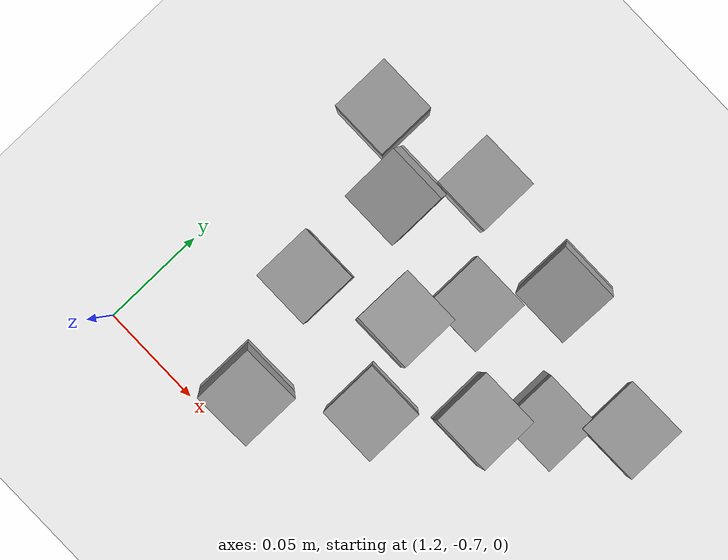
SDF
<sdf version="1.7">
 <world name="default">
  <model name="ground_plane">
   <static>1</static>
   <link name="link">
    <collision name="collision">
     <geometry><plane><normal>0 0 1</normal><size>100 100</size></plane></geometry>
     <surface><friction><ode><mu>100</mu><mu2>50</mu2></ode></friction></surface>
    </collision>
    <visual name="visual">
     <cast_shadows>0</cast_shadows>
     <geometry><plane><normal>0 0 1</normal><size>100 100</size></plane></geometry>
     <material>
      <script><uri>file://media/materials/scripts/gazebo.material</uri><name>Gazebo/Grey</name></script>
     </material>
    </visual>
   </link>
  </model>
  <model name="stone_road_1">
   <link name="link_0_clone_0">
    <inertial>
     <mass>1</mass>
     <inertia>
      <ixx>0.166667</ixx>
      <ixy>0</ixy>
      <ixz>0</ixz>
      <iyy>0.166667</iyy>
      <iyz>0</iyz>
      <izz>0.166667</izz>
     </inertia>
    </inertial>
    <pose>-0.104982 -0.15412 0.003778 0.2 -0 0</pose>
    <kinematic>1</kinematic>
    <visual name="visual">
     <geometry><box><size>0.03 0.03 0.03</size></box></geometry>
     <material>
      <lighting>1</lighting>
      <script><uri>file://media/materials/scripts/gazebo.material</uri><name>Gazebo/Grey</name></script>
      <shader type="pixel"><normal_map>__default__</normal_map></shader>
      <ambient>0.3 0.3 0.3 1</ambient>
      <diffuse>0.7 0.7 0.7 1</diffuse>
      <specular>0.01 0.01 0.01 1</specular>
      <emissive>0 0 0 1</emissive>
     </material>
    </visual>
    <collision name="collision">
     <geometry><box><size>0.03 0.03 0.03</size></box></geometry>
     <surface>
      <friction>
       <ode><mu>1</mu><mu2>1</mu2><fdir1>0 0 0</fdir1><slip1>0</slip1><slip2>0</slip2></ode>
       <torsional>
        <coefficient>1</coefficient>
        <patch_radius>0</patch_radius>
        <surface_radius>0</surface_radius>
        <use_patch_radius>1</use_patch_radius>
        <ode><slip>0</slip></ode>
       </torsional>
      </friction>
      <bounce><restitution_coefficient>0</restitution_coefficient><threshold>1e+06</threshold></bounce>
      <contact>
       <collide_without_contact>0</collide_without_contact>
       <collide_without_contact_bitmask>1</collide_without_contact_bitmask>
       <collide_bitmask>1</collide_bitmask>
       <ode>
        <soft_cfm>0</soft_cfm>
        <soft_erp>0.2</soft_erp>
        <kp>1e+13</kp>
        <kd>1</kd>
        <max_vel>0.01</max_vel>
        <min_depth>0</min_depth>
       </ode>
       <bullet>
        <split_impulse>1</split_impulse>
        <split_impulse_penetration_threshold>-0.01</split_impulse_penetration_threshold>
        <soft_cfm>0</soft_cfm>
        <soft_erp>0.2</soft_erp>
        <kp>1e+13</kp>
        <kd>1</kd>
       </bullet>
      </contact>
     </surface>
    </collision>
   </link>
   <link name="link_0_clone_1">
    <inertial>
     <mass>1</mass>
     <inertia>
      <ixx>0.166667</ixx>
      <ixy>0</ixy>
      <ixz>0</ixz>
      <iyy>0.166667</iyy>
      <iyz>0</iyz>
      <izz>0.166667</izz>
     </inertia>
    </inertial>
    <pose>-0.022921 -0.129606 0.003778 0.2 -0 0</pose>
    <kinematic>1</kinematic>
    <visual name="visual">
     <geometry><box><size>0.03 0.03 0.03</size></box></geometry>
     <material>
      <lighting>1</lighting>
      <script><uri>file://media/materials/scripts/gazebo.material</uri><name>Gazebo/Grey</name></script>
      <shader type="pixel"><normal_map>__default__</normal_map></shader>
      <ambient>0.3 0.3 0.3 1</ambient>
      <diffuse>0.7 0.7 0.7 1</diffuse>
      <specular>0.01 0.01 0.01 1</specular>
      <emissive>0 0 0 1</emissive>
     </material>
    </visual>
    <collision name="collision">
     <geometry><box><size>0.03 0.03 0.03</size></box></geometry>
     <surface>
      <friction>
       <ode><mu>1</mu><mu2>1</mu2><fdir1>0 0 0</fdir1><slip1>0</slip1><slip2>0</slip2></ode>
       <torsional>
        <coefficient>1</coefficient>
        <patch_radius>0</patch_radius>
        <surface_radius>0</surface_radius>
        <use_patch_radius>1</use_patch_radius>
        <ode><slip>0</slip></ode>
       </torsional>
      </friction>
      <bounce><restitution_coefficient>0</restitution_coefficient><threshold>1e+06</threshold></bounce>
      <contact>
       <collide_without_contact>0</collide_without_contact>
       <collide_without_contact_bitmask>1</collide_without_contact_bitmask>
       <collide_bitmask>1</collide_bitmask>
       <ode>
        <soft_cfm>0</soft_cfm>
        <soft_erp>0.2</soft_erp>
        <kp>1e+13</kp>
        <kd>1</kd>
        <max_vel>0.01</max_vel>
        <min_depth>0</min_depth>
       </ode>
       <bullet>
        <split_impulse>1</split_impulse>
        <split_impulse_penetration_threshold>-0.01</split_impulse_penetration_threshold>
        <soft_cfm>0</soft_cfm>
        <soft_erp>0.2</soft_erp>
        <kp>1e+13</kp>
        <kd>1</kd>
       </bullet>
      </contact>
     </surface>
    </collision>
   </link>
   <link name="link_0_clone_2_clone_2_clone_13_clone_clone_10">
    <inertial>
     <mass>1</mass>
     <inertia>
      <ixx>0.166667</ixx>
      <ixy>0</ixy>
      <ixz>0</ixz>
      <iyy>0.166667</iyy>
      <iyz>0</iyz>
      <izz>0.166667</izz>
     </inertia>
    </inertial>
    <pose>-0.006825 -0.196489 0.003778 -0.1 0 0</pose>
    <kinematic>1</kinematic>
    <visual name="visual">
     <geometry><box><size>0.03 0.03 0.03</size></box></geometry>
     <material>
      <lighting>1</lighting>
      <script><uri>file://media/materials/scripts/gazebo.material</uri><name>Gazebo/Grey</name></script>
      <shader type="pixel"><normal_map>__default__</normal_map></shader>
      <ambient>0.3 0.3 0.3 1</ambient>
      <diffuse>0.7 0.7 0.7 1</diffuse>
      <specular>0.01 0.01 0.01 1</specular>
      <emissive>0 0 0 1</emissive>
     </material>
    </visual>
    <collision name="collision">
     <geometry><box><size>0.03 0.03 0.03</size></box></geometry>
     <surface>
      <friction>
       <ode><mu>1</mu><mu2>1</mu2><fdir1>0 0 0</fdir1><slip1>0</slip1><slip2>0</slip2></ode>
       <torsional>
        <coefficient>1</coefficient>
        <patch_radius>0</patch_radius>
        <surface_radius>0</surface_radius>
        <use_patch_radius>1</use_patch_radius>
        <ode><slip>0</slip></ode>
       </torsional>
      </friction>
      <bounce><restitution_coefficient>0</restitution_coefficient><threshold>1e+06</threshold></bounce>
      <contact>
       <collide_without_contact>0</collide_without_contact>
       <collide_without_contact_bitmask>1</collide_without_contact_bitmask>
       <collide_bitmask>1</collide_bitmask>
       <ode>
        <soft_cfm>0</soft_cfm>
        <soft_erp>0.2</soft_erp>
        <kp>1e+13</kp>
        <kd>1</kd>
        <max_vel>0.01</max_vel>
        <min_depth>0</min_depth>
       </ode>
       <bullet>
        <split_impulse>1</split_impulse>
        <split_impulse_penetration_threshold>-0.01</split_impulse_penetration_threshold>
        <soft_cfm>0</soft_cfm>
        <soft_erp>0.2</soft_erp>
        <kp>1e+13</kp>
        <kd>1</kd>
       </bullet>
      </contact>
     </surface>
    </collision>
   </link>
   <link name="link_0_clone_2_clone_2_clone_13_clone_clone_16_clone_17">
    <inertial>
     <mass>1</mass>
     <inertia>
      <ixx>0.166667</ixx>
      <ixy>0</ixy>
      <ixz>0</ixz>
      <iyy>0.166667</iyy>
      <iyz>0</iyz>
      <izz>0.166667</izz>
     </inertia>
    </inertial>
    <pose>0.014877 -0.175392 -0.006222 0 -0 0</pose>
    <kinematic>1</kinematic>
    <visual name="visual">
     <geometry><box><size>0.03 0.03 0.03</size></box></geometry>
     <material>
      <lighting>1</lighting>
      <script><uri>file://media/materials/scripts/gazebo.material</uri><name>Gazebo/Grey</name></script>
      <shader type="pixel"><normal_map>__default__</normal_map></shader>
      <ambient>0.3 0.3 0.3 1</ambient>
      <diffuse>0.7 0.7 0.7 1</diffuse>
      <specular>0.01 0.01 0.01 1</specular>
      <emissive>0 0 0 1</emissive>
     </material>
    </visual>
    <collision name="collision">
     <geometry><box><size>0.03 0.03 0.03</size></box></geometry>
     <surface>
      <friction>
       <ode><mu>1</mu><mu2>1</mu2><fdir1>0 0 0</fdir1><slip1>0</slip1><slip2>0</slip2></ode>
       <torsional>
        <coefficient>1</coefficient>
        <patch_radius>0</patch_radius>
        <surface_radius>0</surface_radius>
        <use_patch_radius>1</use_patch_radius>
        <ode><slip>0</slip></ode>
       </torsional>
      </friction>
      <bounce><restitution_coefficient>0</restitution_coefficient><threshold>1e+06</threshold></bounce>
      <contact>
       <collide_without_contact>0</collide_without_contact>
       <collide_without_contact_bitmask>1</collide_without_contact_bitmask>
       <collide_bitmask>1</collide_bitmask>
       <ode>
        <soft_cfm>0</soft_cfm>
        <soft_erp>0.2</soft_erp>
        <kp>1e+13</kp>
        <kd>1</kd>
        <max_vel>0.01</max_vel>
        <min_depth>0</min_depth>
       </ode>
       <bullet>
        <split_impulse>1</split_impulse>
        <split_impulse_penetration_threshold>-0.01</split_impulse_penetration_threshold>
        <soft_cfm>0</soft_cfm>
        <soft_erp>0.2</soft_erp>
        <kp>1e+13</kp>
        <kd>1</kd>
       </bullet>
      </contact>
     </surface>
    </collision>
   </link>
   <link name="link_0_clone_2_clone_2_clone_13_clone_clone_16_clone_27">
    <inertial>
     <mass>1</mass>
     <inertia>
      <ixx>0.166667</ixx>
      <ixy>0</ixy>
      <ixz>0</ixz>
      <iyy>0.166667</iyy>
      <iyz>0</iyz>
      <izz>0.166667</izz>
     </inertia>
    </inertial>
    <pose>-0.137316 -0.132225 -0.006222 0 -0 0</pose>
    <kinematic>1</kinematic>
    <visual name="visual">
     <geometry><box><size>0.03 0.03 0.03</size></box></geometry>
     <material>
      <lighting>1</lighting>
      <script><uri>file://media/materials/scripts/gazebo.material</uri><name>Gazebo/Grey</name></script>
      <shader type="pixel"><normal_map>__default__</normal_map></shader>
      <ambient>0.3 0.3 0.3 1</ambient>
      <diffuse>0.7 0.7 0.7 1</diffuse>
      <specular>0.01 0.01 0.01 1</specular>
      <emissive>0 0 0 1</emissive>
     </material>
    </visual>
    <collision name="collision">
     <geometry><box><size>0.03 0.03 0.03</size></box></geometry>
     <surface>
      <friction>
       <ode><mu>1</mu><mu2>1</mu2><fdir1>0 0 0</fdir1><slip1>0</slip1><slip2>0</slip2></ode>
       <torsional>
        <coefficient>1</coefficient>
        <patch_radius>0</patch_radius>
        <surface_radius>0</surface_radius>
        <use_patch_radius>1</use_patch_radius>
        <ode><slip>0</slip></ode>
       </torsional>
      </friction>
      <bounce><restitution_coefficient>0</restitution_coefficient><threshold>1e+06</threshold></bounce>
      <contact>
       <collide_without_contact>0</collide_without_contact>
       <collide_without_contact_bitmask>1</collide_without_contact_bitmask>
       <collide_bitmask>1</collide_bitmask>
       <ode>
        <soft_cfm>0</soft_cfm>
        <soft_erp>0.2</soft_erp>
        <kp>1e+13</kp>
        <kd>1</kd>
        <max_vel>0.01</max_vel>
        <min_depth>0</min_depth>
       </ode>
       <bullet>
        <split_impulse>1</split_impulse>
        <split_impulse_penetration_threshold>-0.01</split_impulse_penetration_threshold>
        <soft_cfm>0</soft_cfm>
        <soft_erp>0.2</soft_erp>
        <kp>1e+13</kp>
        <kd>1</kd>
       </bullet>
      </contact>
     </surface>
    </collision>
   </link>
   <link name="link_0_clone_2_clone_2_clone_13_clone_clone_16_clone_28">
    <inertial>
     <mass>1</mass>
     <inertia>
      <ixx>0.166667</ixx>
      <ixy>0</ixy>
      <ixz>0</ixz>
      <iyy>0.166667</iyy>
      <iyz>0</iyz>
      <izz>0.166667</izz>
     </inertia>
    </inertial>
    <pose>-0.10708 -0.209042 -0.006222 0 -0 0</pose>
    <kinematic>1</kinematic>
    <visual name="visual">
     <geometry><box><size>0.03 0.03 0.03</size></box></geometry>
     <material>
      <lighting>1</lighting>
      <script><uri>file://media/materials/scripts/gazebo.material</uri><name>Gazebo/Grey</name></script>
      <shader type="pixel"><normal_map>__default__</normal_map></shader>
      <ambient>0.3 0.3 0.3 1</ambient>
      <diffuse>0.7 0.7 0.7 1</diffuse>
      <specular>0.01 0.01 0.01 1</specular>
      <emissive>0 0 0 1</emissive>
     </material>
    </visual>
    <collision name="collision">
     <geometry><box><size>0.03 0.03 0.03</size></box></geometry>
     <surface>
      <friction>
       <ode><mu>1</mu><mu2>1</mu2><fdir1>0 0 0</fdir1><slip1>0</slip1><slip2>0</slip2></ode>
       <torsional>
        <coefficient>1</coefficient>
        <patch_radius>0</patch_radius>
        <surface_radius>0</surface_radius>
        <use_patch_radius>1</use_patch_radius>
        <ode><slip>0</slip></ode>
       </torsional>
      </friction>
      <bounce><restitution_coefficient>0</restitution_coefficient><threshold>1e+06</threshold></bounce>
      <contact>
       <collide_without_contact>0</collide_without_contact>
       <collide_without_contact_bitmask>1</collide_without_contact_bitmask>
       <collide_bitmask>1</collide_bitmask>
       <ode>
        <soft_cfm>0</soft_cfm>
        <soft_erp>0.2</soft_erp>
        <kp>1e+13</kp>
        <kd>1</kd>
        <max_vel>0.01</max_vel>
        <min_depth>0</min_depth>
       </ode>
       <bullet>
        <split_impulse>1</split_impulse>
        <split_impulse_penetration_threshold>-0.01</split_impulse_penetration_threshold>
        <soft_cfm>0</soft_cfm>
        <soft_erp>0.2</soft_erp>
        <kp>1e+13</kp>
        <kd>1</kd>
       </bullet>
      </contact>
     </surface>
    </collision>
   </link>
   <link name="link_0_clone_2_clone_2_clone_13_clone_clone_16_clone_29">
    <inertial>
     <mass>1</mass>
     <inertia>
      <ixx>0.166667</ixx>
      <ixy>0</ixy>
      <ixz>0</ixz>
      <iyy>0.166667</iyy>
      <iyz>0</iyz>
      <izz>0.166667</izz>
     </inertia>
    </inertial>
    <pose>-0.042964 -0.229632 -0.006222 0 -0 0</pose>
    <kinematic>1</kinematic>
    <visual name="visual">
     <geometry><box><size>0.03 0.03 0.03</size></box></geometry>
     <material>
      <lighting>1</lighting>
      <script><uri>file://media/materials/scripts/gazebo.material</uri><name>Gazebo/Grey</name></script>
      <shader type="pixel"><normal_map>__default__</normal_map></shader>
      <ambient>0.3 0.3 0.3 1</ambient>
      <diffuse>0.7 0.7 0.7 1</diffuse>
      <specular>0.01 0.01 0.01 1</specular>
      <emissive>0 0 0 1</emissive>
     </material>
    </visual>
    <collision name="collision">
     <geometry><box><size>0.03 0.03 0.03</size></box></geometry>
     <surface>
      <friction>
       <ode><mu>1</mu><mu2>1</mu2><fdir1>0 0 0</fdir1><slip1>0</slip1><slip2>0</slip2></ode>
       <torsional>
        <coefficient>1</coefficient>
        <patch_radius>0</patch_radius>
        <surface_radius>0</surface_radius>
        <use_patch_radius>1</use_patch_radius>
        <ode><slip>0</slip></ode>
       </torsional>
      </friction>
      <bounce><restitution_coefficient>0</restitution_coefficient><threshold>1e+06</threshold></bounce>
      <contact>
       <collide_without_contact>0</collide_without_contact>
       <collide_without_contact_bitmask>1</collide_without_contact_bitmask>
       <collide_bitmask>1</collide_bitmask>
       <ode>
        <soft_cfm>0</soft_cfm>
        <soft_erp>0.2</soft_erp>
        <kp>1e+13</kp>
        <kd>1</kd>
        <max_vel>0.01</max_vel>
        <min_depth>0</min_depth>
       </ode>
       <bullet>
        <split_impulse>1</split_impulse>
        <split_impulse_penetration_threshold>-0.01</split_impulse_penetration_threshold>
        <soft_cfm>0</soft_cfm>
        <soft_erp>0.2</soft_erp>
        <kp>1e+13</kp>
        <kd>1</kd>
       </bullet>
      </contact>
     </surface>
    </collision>
   </link>
   <link name="link_0_clone_2_clone_2_clone_13_clone_clone_16_clone_8">
    <inertial>
     <mass>1</mass>
     <inertia>
      <ixx>0.166667</ixx>
      <ixy>0</ixy>
      <ixz>0</ixz>
      <iyy>0.166667</iyy>
      <iyz>0</iyz>
      <izz>0.166667</izz>
     </inertia>
    </inertial>
    <pose>-0.045715 -0.162471 -0.006222 0 -0 0</pose>
    <kinematic>1</kinematic>
    <visual name="visual">
     <geometry><box><size>0.03 0.03 0.03</size></box></geometry>
     <material>
      <lighting>1</lighting>
      <script><uri>file://media/materials/scripts/gazebo.material</uri><name>Gazebo/Grey</name></script>
      <shader type="pixel"><normal_map>__default__</normal_map></shader>
      <ambient>0.3 0.3 0.3 1</ambient>
      <diffuse>0.7 0.7 0.7 1</diffuse>
      <specular>0.01 0.01 0.01 1</specular>
      <emissive>0 0 0 1</emissive>
     </material>
    </visual>
    <collision name="collision">
     <geometry><box><size>0.03 0.03 0.03</size></box></geometry>
     <surface>
      <friction>
       <ode><mu>1</mu><mu2>1</mu2><fdir1>0 0 0</fdir1><slip1>0</slip1><slip2>0</slip2></ode>
       <torsional>
        <coefficient>1</coefficient>
        <patch_radius>0</patch_radius>
        <surface_radius>0</surface_radius>
        <use_patch_radius>1</use_patch_radius>
        <ode><slip>0</slip></ode>
       </torsional>
      </friction>
      <bounce><restitution_coefficient>0</restitution_coefficient><threshold>1e+06</threshold></bounce>
      <contact>
       <collide_without_contact>0</collide_without_contact>
       <collide_without_contact_bitmask>1</collide_without_contact_bitmask>
       <collide_bitmask>1</collide_bitmask>
       <ode>
        <soft_cfm>0</soft_cfm>
        <soft_erp>0.2</soft_erp>
        <kp>1e+13</kp>
        <kd>1</kd>
        <max_vel>0.01</max_vel>
        <min_depth>0</min_depth>
       </ode>
       <bullet>
        <split_impulse>1</split_impulse>
        <split_impulse_penetration_threshold>-0.01</split_impulse_penetration_threshold>
        <soft_cfm>0</soft_cfm>
        <soft_erp>0.2</soft_erp>
        <kp>1e+13</kp>
        <kd>1</kd>
       </bullet>
      </contact>
     </surface>
    </collision>
   </link>
   <link name="link_0_clone_2_clone_2_clone_13_clone_clone_16_clone_9">
    <inertial>
     <mass>1</mass>
     <inertia>
      <ixx>0.166667</ixx>
      <ixy>0</ixy>
      <ixz>0</ixz>
      <iyy>0.166667</iyy>
      <iyz>0</iyz>
      <izz>0.166667</izz>
     </inertia>
    </inertial>
    <pose>-0.081689 -0.122641 -0.006222 0 -0 0</pose>
    <kinematic>1</kinematic>
    <visual name="visual">
     <geometry><box><size>0.03 0.03 0.03</size></box></geometry>
     <material>
      <lighting>1</lighting>
      <script><uri>file://media/materials/scripts/gazebo.material</uri><name>Gazebo/Grey</name></script>
      <shader type="pixel"><normal_map>__default__</normal_map></shader>
      <ambient>0.3 0.3 0.3 1</ambient>
      <diffuse>0.7 0.7 0.7 1</diffuse>
      <specular>0.01 0.01 0.01 1</specular>
      <emissive>0 0 0 1</emissive>
     </material>
    </visual>
    <collision name="collision">
     <geometry><box><size>0.03 0.03 0.03</size></box></geometry>
     <surface>
      <friction>
       <ode><mu>1</mu><mu2>1</mu2><fdir1>0 0 0</fdir1><slip1>0</slip1><slip2>0</slip2></ode>
       <torsional>
        <coefficient>1</coefficient>
        <patch_radius>0</patch_radius>
        <surface_radius>0</surface_radius>
        <use_patch_radius>1</use_patch_radius>
        <ode><slip>0</slip></ode>
       </torsional>
      </friction>
      <bounce><restitution_coefficient>0</restitution_coefficient><threshold>1e+06</threshold></bounce>
      <contact>
       <collide_without_contact>0</collide_without_contact>
       <collide_without_contact_bitmask>1</collide_without_contact_bitmask>
       <collide_bitmask>1</collide_bitmask>
       <ode>
        <soft_cfm>0</soft_cfm>
        <soft_erp>0.2</soft_erp>
        <kp>1e+13</kp>
        <kd>1</kd>
        <max_vel>0.01</max_vel>
        <min_depth>0</min_depth>
       </ode>
       <bullet>
        <split_impulse>1</split_impulse>
        <split_impulse_penetration_threshold>-0.01</split_impulse_penetration_threshold>
        <soft_cfm>0</soft_cfm>
        <soft_erp>0.2</soft_erp>
        <kp>1e+13</kp>
        <kd>1</kd>
       </bullet>
      </contact>
     </surface>
    </collision>
   </link>
   <link name="link_0_clone_2_clone_2_clone_13_clone_clone_9">
    <inertial>
     <mass>1</mass>
     <inertia>
      <ixx>0.166667</ixx>
      <ixy>0</ixy>
      <ixz>0</ixz>
      <iyy>0.166667</iyy>
      <iyz>0</iyz>
      <izz>0.166667</izz>
     </inertia>
    </inertial>
    <pose>-0.062692 -0.190617 0.003778 -0.1 0 0</pose>
    <kinematic>1</kinematic>
    <visual name="visual">
     <geometry><box><size>0.03 0.03 0.03</size></box></geometry>
     <material>
      <lighting>1</lighting>
      <script><uri>file://media/materials/scripts/gazebo.material</uri><name>Gazebo/Grey</name></script>
      <shader type="pixel"><normal_map>__default__</normal_map></shader>
      <ambient>0.3 0.3 0.3 1</ambient>
      <diffuse>0.7 0.7 0.7 1</diffuse>
      <specular>0.01 0.01 0.01 1</specular>
      <emissive>0 0 0 1</emissive>
     </material>
    </visual>
    <collision name="collision">
     <geometry><box><size>0.03 0.03 0.03</size></box></geometry>
     <surface>
      <friction>
       <ode><mu>1</mu><mu2>1</mu2><fdir1>0 0 0</fdir1><slip1>0</slip1><slip2>0</slip2></ode>
       <torsional>
        <coefficient>1</coefficient>
        <patch_radius>0</patch_radius>
        <surface_radius>0</surface_radius>
        <use_patch_radius>1</use_patch_radius>
        <ode><slip>0</slip></ode>
       </torsional>
      </friction>
      <bounce><restitution_coefficient>0</restitution_coefficient><threshold>1e+06</threshold></bounce>
      <contact>
       <collide_without_contact>0</collide_without_contact>
       <collide_without_contact_bitmask>1</collide_without_contact_bitmask>
       <collide_bitmask>1</collide_bitmask>
       <ode>
        <soft_cfm>0</soft_cfm>
        <soft_erp>0.2</soft_erp>
        <kp>1e+13</kp>
        <kd>1</kd>
        <max_vel>0.01</max_vel>
        <min_depth>0</min_depth>
       </ode>
       <bullet>
        <split_impulse>1</split_impulse>
        <split_impulse_penetration_threshold>-0.01</split_impulse_penetration_threshold>
        <soft_cfm>0</soft_cfm>
        <soft_erp>0.2</soft_erp>
        <kp>1e+13</kp>
        <kd>1</kd>
       </bullet>
      </contact>
     </surface>
    </collision>
   </link>
   <link name="link_0_clone_2_clone_2_clone_4">
    <inertial>
     <mass>1</mass>
     <inertia>
      <ixx>0.166667</ixx>
      <ixy>0</ixy>
      <ixz>0</ixz>
      <iyy>0.166667</iyy>
      <iyz>0</iyz>
      <izz>0.166667</izz>
     </inertia>
    </inertial>
    <pose>0.042048 -0.151731 0.003778 0 -0.15 0</pose>
    <kinematic>1</kinematic>
    <visual name="visual">
     <geometry><box><size>0.03 0.03 0.03</size></box></geometry>
     <material>
      <lighting>1</lighting>
      <script><uri>file://media/materials/scripts/gazebo.material</uri><name>Gazebo/Grey</name></script>
      <shader type="pixel"><normal_map>__default__</normal_map></shader>
      <ambient>0.3 0.3 0.3 1</ambient>
      <diffuse>0.7 0.7 0.7 1</diffuse>
      <specular>0.01 0.01 0.01 1</specular>
      <emissive>0 0 0 1</emissive>
     </material>
    </visual>
    <collision name="collision">
     <geometry><box><size>0.03 0.03 0.03</size></box></geometry>
     <surface>
      <friction>
       <ode><mu>1</mu><mu2>1</mu2><fdir1>0 0 0</fdir1><slip1>0</slip1><slip2>0</slip2></ode>
       <torsional>
        <coefficient>1</coefficient>
        <patch_radius>0</patch_radius>
        <surface_radius>0</surface_radius>
        <use_patch_radius>1</use_patch_radius>
        <ode><slip>0</slip></ode>
       </torsional>
      </friction>
      <bounce><restitution_coefficient>0</restitution_coefficient><threshold>1e+06</threshold></bounce>
      <contact>
       <collide_without_contact>0</collide_without_contact>
       <collide_without_contact_bitmask>1</collide_without_contact_bitmask>
       <collide_bitmask>1</collide_bitmask>
       <ode>
        <soft_cfm>0</soft_cfm>
        <soft_erp>0.2</soft_erp>
        <kp>1e+13</kp>
        <kd>1</kd>
        <max_vel>0.01</max_vel>
        <min_depth>0</min_depth>
       </ode>
       <bullet>
        <split_impulse>1</split_impulse>
        <split_impulse_penetration_threshold>-0.01</split_impulse_penetration_threshold>
        <soft_cfm>0</soft_cfm>
        <soft_erp>0.2</soft_erp>
        <kp>1e+13</kp>
        <kd>1</kd>
       </bullet>
      </contact>
     </surface>
    </collision>
   </link>
   <link name="link_0_clone_2_clone_6">
    <inertial>
     <mass>1</mass>
     <inertia>
      <ixx>0.166667</ixx>
      <ixy>0</ixy>
      <ixz>0</ixz>
      <iyy>0.166667</iyy>
      <iyz>0</iyz>
      <izz>0.166667</izz>
     </inertia>
    </inertial>
    <pose>-0.087859 -0.263184 0.003778 0 0.15 0</pose>
    <kinematic>1</kinematic>
    <visual name="visual">
     <geometry><box><size>0.03 0.03 0.03</size></box></geometry>
     <material>
      <lighting>1</lighting>
      <script><uri>file://media/materials/scripts/gazebo.material</uri><name>Gazebo/Grey</name></script>
      <shader type="pixel"><normal_map>__default__</normal_map></shader>
      <ambient>0.3 0.3 0.3 1</ambient>
      <diffuse>0.7 0.7 0.7 1</diffuse>
      <specular>0.01 0.01 0.01 1</specular>
      <emissive>0 0 0 1</emissive>
     </material>
    </visual>
    <collision name="collision">
     <geometry><box><size>0.03 0.03 0.03</size></box></geometry>
     <surface>
      <friction>
       <ode><mu>1</mu><mu2>1</mu2><fdir1>0 0 0</fdir1><slip1>0</slip1><slip2>0</slip2></ode>
       <torsional>
        <coefficient>1</coefficient>
        <patch_radius>0</patch_radius>
        <surface_radius>0</surface_radius>
        <use_patch_radius>1</use_patch_radius>
        <ode><slip>0</slip></ode>
       </torsional>
      </friction>
      <bounce><restitution_coefficient>0</restitution_coefficient><threshold>1e+06</threshold></bounce>
      <contact>
       <collide_without_contact>0</collide_without_contact>
       <collide_without_contact_bitmask>1</collide_without_contact_bitmask>
       <collide_bitmask>1</collide_bitmask>
       <ode>
        <soft_cfm>0</soft_cfm>
        <soft_erp>0.2</soft_erp>
        <kp>1e+13</kp>
        <kd>1</kd>
        <max_vel>0.01</max_vel>
        <min_depth>0</min_depth>
       </ode>
       <bullet>
        <split_impulse>1</split_impulse>
        <split_impulse_penetration_threshold>-0.01</split_impulse_penetration_threshold>
        <soft_cfm>0</soft_cfm>
        <soft_erp>0.2</soft_erp>
        <kp>1e+13</kp>
        <kd>1</kd>
       </bullet>
      </contact>
     </surface>
    </collision>
   </link>
   <static>0</static>
   <pose>1.35395 -0.41641 -0 0 -0 0</pose>
  </model>
 </world>
</sdf>
